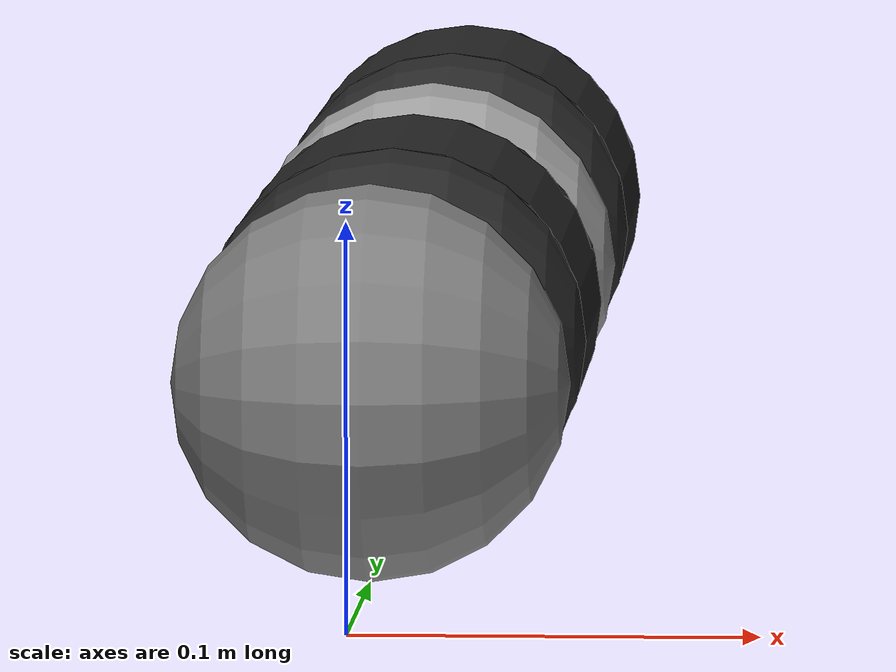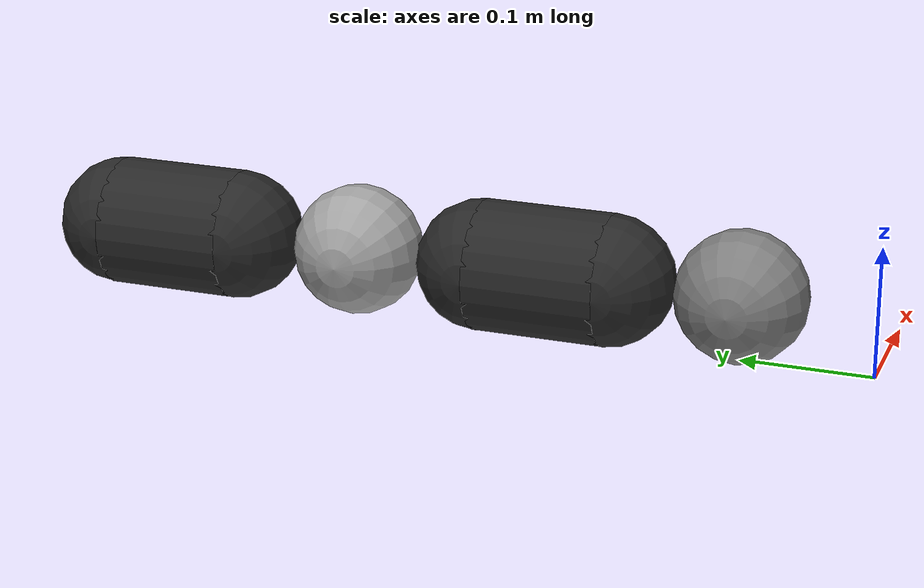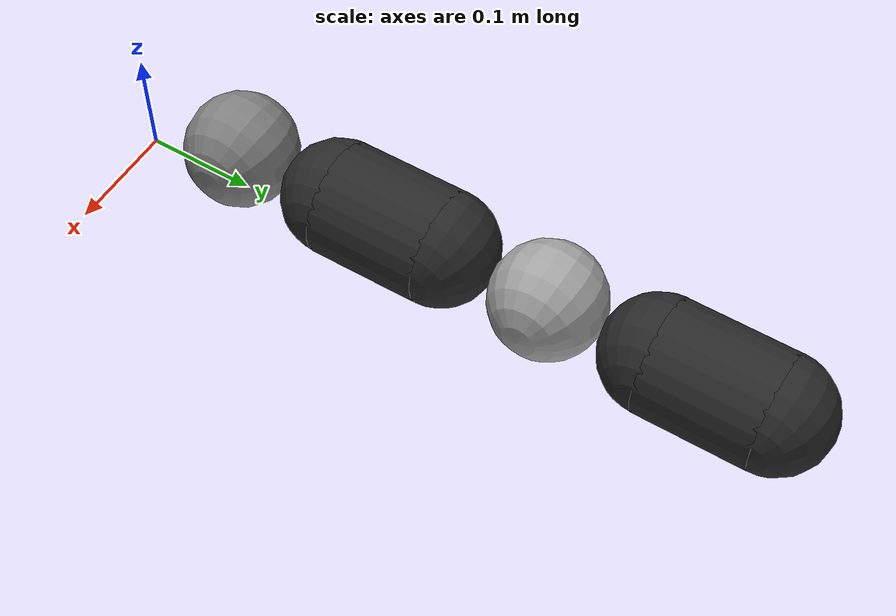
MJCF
<mujoco model="robot_right">
  <compiler eulerseq="XYZ" autolimits="true"/>

  <default>
    <default class="right_arm"/>
  </default>
  <asset>
    <material name="ra_material_1" class="right_arm" emission="0" specular="0" rgba="0.15999999642372131 0.15999999642372131 0.15999999642372131 1"/>
    <material name="ra_material_2" class="right_arm" emission="0" specular="0" rgba="0.15999999642372131 0.15999999642372131 0.15999999642372131 1"/>
    <material name="ra_material_3" class="right_arm" emission="0" specular="0" rgba="0.63999998569488525 0.63999998569488525 0.63999998569488525 1"/>
    <material name="ra_material_4" class="right_arm" emission="0" specular="0" rgba="0.15999999642372131 0.15999999642372131 0.15999999642372131 1"/>
    <material name="ra_material_5" class="right_arm" emission="0" specular="0" rgba="0.15999999642372131 0.15999999642372131 0.15999999642372131 1"/>
    <material name="ra_material_6" class="right_arm" emission="0" specular="0" rgba="0.15999999642372131 0.15999999642372131 0.15999999642372131 1"/>
    <material name="ra_material_7" class="right_arm" emission="0" specular="0" rgba="0.15999999642372131 0.15999999642372131 0.15999999642372131 1"/>
  </asset>
  <worldbody>
    <body name="ra_0" pos="0 0.1 0.05" euler="0 -90 0">
      <geom name="ra_collision" class="right_arm" type="sphere" group="3" size="0.050000000000000003" friction="0.80000000000000004 0.0050000000000000001 0.0001" pos="0 0 0" euler="0 -0 0"/>
      <geom name="ra_ball" class="right_arm" type="sphere" contype="0" conaffinity="0" group="0" size="0.050000000000000003" pos="0 0 0" euler="0 -0 0"/>
      <body name="ra_1" pos="0 0 0" euler="0 -0 0">
        <geom name="ra_collision_0" class="right_arm" type="sphere" group="3" size="0.050000000000000003" friction="0.80000000000000004 0.0050000000000000001 0.0001" pos="0 0.10000000000000001 0" euler="0 -0 0"/>
        <geom name="ra_collision_1" class="right_arm" type="sphere" group="3" size="0.050000000000000003" friction="0.80000000000000004 0.0050000000000000001 0.0001" pos="0 0.20000000000000001 0" euler="0 -0 0"/>
        <geom name="ra_collision_2" class="right_arm" type="sphere" group="3" size="0.050000000000000003" friction="0.80000000000000004 0.0050000000000000001 0.0001" pos="0 0.29999999999999999 0" euler="0 -0 0"/>
        <geom name="ra_ball0" class="right_arm" type="sphere" contype="0" conaffinity="0" group="0" size="0.050000000000000003" material="ra_material_1" pos="0 0.10000000000000001 0" euler="0 -0 0"/>
        <geom name="ra_ball1" class="right_arm" type="sphere" contype="0" conaffinity="0" group="0" size="0.050000000000000003" material="ra_material_2" pos="0 0.20000000000000001 0" euler="0 -0 0"/>
        <geom name="ra_ball2" class="right_arm" type="sphere" contype="0" conaffinity="0" group="0" size="0.050000000000000003" material="ra_material_3" pos="0 0.29999999999999999 0" euler="0 -0 0"/>
        <geom name="ra_cylinder" class="right_arm" type="cylinder" contype="0" conaffinity="0" group="0" size="0.050000000000000003 0.050000000000000003" material="ra_material_4" pos="0 0.14999999999999999 0" euler="89.999999610681101 -0 0"/>
        <joint name="robot:ra_joint_1" class="right_arm" type="hinge" pos="0 0 0" axis="1 0 0" limited="true" range="0 90.000210459149713"/>
        <body name="ra_2" pos="0 0.29999999999999999 0" euler="0 -0 0">
          <geom name="ra_collision_0_0" class="right_arm" type="sphere" group="3" size="0.050000000000000003" friction="0.80000000000000004 0.0050000000000000001 0.0001" pos="0 0.10000000000000001 0" euler="0 -0 0"/>
          <geom name="ra_collision_1_0" class="right_arm" type="sphere" group="3" size="0.050000000000000003" friction="0.80000000000000004 0.0050000000000000001 0.0001" pos="0 0.20000000000000001 0" euler="0 -0 0"/>
          <geom name="ra_ball0_0" class="right_arm" type="sphere" contype="0" conaffinity="0" group="0" size="0.050000000000000003" material="ra_material_5" pos="0 0.10000000000000001 0" euler="0 -0 0"/>
          <geom name="ra_ball1_0" class="right_arm" type="sphere" contype="0" conaffinity="0" group="0" size="0.050000000000000003" material="ra_material_6" pos="0 0.20000000000000001 0" euler="0 -0 0"/>
          <geom name="ra_cylinder_0" class="right_arm" type="cylinder" contype="0" conaffinity="0" group="0" size="0.050000000000000003 0.050000000000000003" material="ra_material_7" pos="0 0.14999999999999999 0" euler="89.999999610681101 -0 0"/>
          <joint name="robot:ra_joint_2" class="right_arm" type="hinge" pos="0 0 0" axis="1 0 0" limited="true" range="0 137.50987083139756"/>
        </body>
      </body>
    </body>
  </worldbody>

  <actuator>
    <position class="right_arm" name="robot:ra_actuator_1" joint="robot:ra_joint_1" kp="10"
              ctrlrange="0 1.57"/>
    <position class="right_arm" name="robot:ra_actuator_2" joint="robot:ra_joint_2" kp="10"
              ctrlrange="0 2.399828"/>
  </actuator>
</mujoco>
